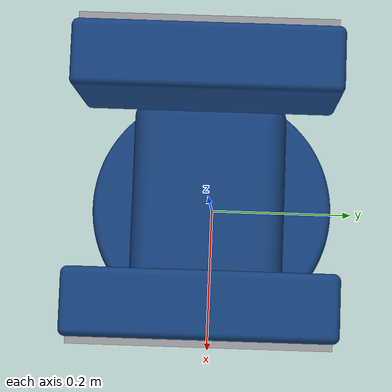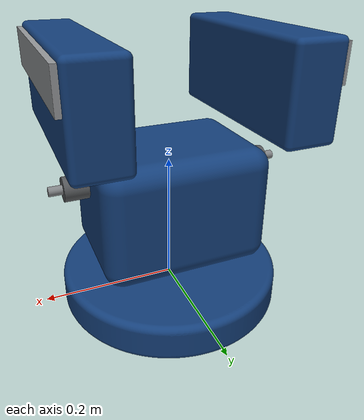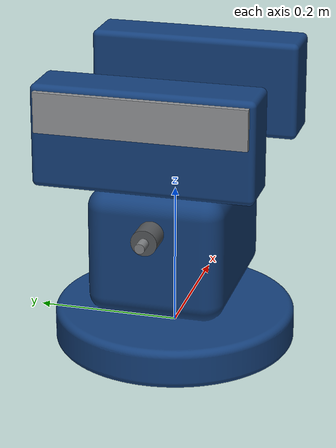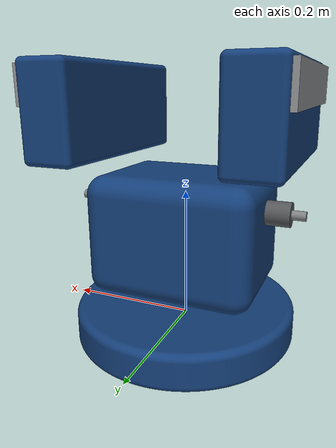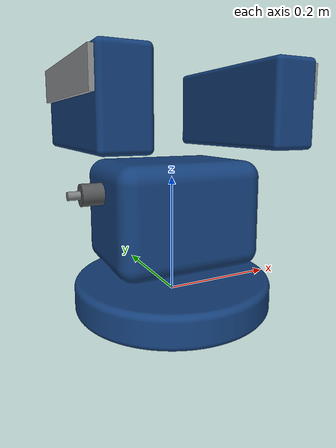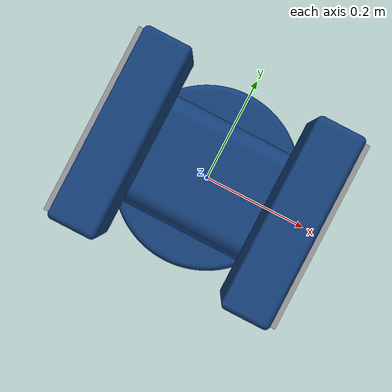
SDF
<?xml version="1.0"?><sdf version="1.6"><model name="shop_vise"><static>true</static><link name="link">
<visual name="body"><geometry><mesh><uri>model://shop_vise/meshes/vise_body.stl</uri></mesh></geometry><material><ambient>0.080 0.250 0.480 1</ambient><diffuse>0.080 0.250 0.480 1</diffuse><specular>0.10 0.10 0.10 1</specular></material></visual>
<visual name="fixed"><geometry><mesh><uri>model://shop_vise/meshes/fixed_jaw.stl</uri></mesh></geometry><material><ambient>0.080 0.250 0.480 1</ambient><diffuse>0.080 0.250 0.480 1</diffuse><specular>0.10 0.10 0.10 1</specular></material></visual>
<visual name="moving"><geometry><mesh><uri>model://shop_vise/meshes/moving_jaw.stl</uri></mesh></geometry><material><ambient>0.080 0.250 0.480 1</ambient><diffuse>0.080 0.250 0.480 1</diffuse><specular>0.10 0.10 0.10 1</specular></material></visual>
<visual name="plate1"><geometry><mesh><uri>model://shop_vise/meshes/jaw_plate_fixed.stl</uri></mesh></geometry><material><ambient>0.580 0.590 0.600 1</ambient><diffuse>0.580 0.590 0.600 1</diffuse><specular>0.10 0.10 0.10 1</specular></material></visual>
<visual name="plate2"><geometry><mesh><uri>model://shop_vise/meshes/jaw_plate_move.stl</uri></mesh></geometry><material><ambient>0.580 0.590 0.600 1</ambient><diffuse>0.580 0.590 0.600 1</diffuse><specular>0.10 0.10 0.10 1</specular></material></visual>
<visual name="screw"><geometry><mesh><uri>model://shop_vise/meshes/screw.stl</uri></mesh></geometry><material><ambient>0.330 0.340 0.350 1</ambient><diffuse>0.330 0.340 0.350 1</diffuse><specular>0.10 0.10 0.10 1</specular></material></visual>
<visual name="handlebar"><geometry><mesh><uri>model://shop_vise/meshes/handlebar.stl</uri></mesh></geometry><material><ambient>0.500 0.510 0.520 1</ambient><diffuse>0.500 0.510 0.520 1</diffuse><specular>0.10 0.10 0.10 1</specular></material></visual>
<collision name="base"><pose>0 0 0.10 0 0 0</pose><geometry><box><size>0.34 0.30 0.20</size></box></geometry></collision>
<collision name="jaws"><pose>0 0 0.32 0 0 0</pose><geometry><box><size>0.36 0.32 0.16</size></box></geometry></collision>
</link></model></sdf>
